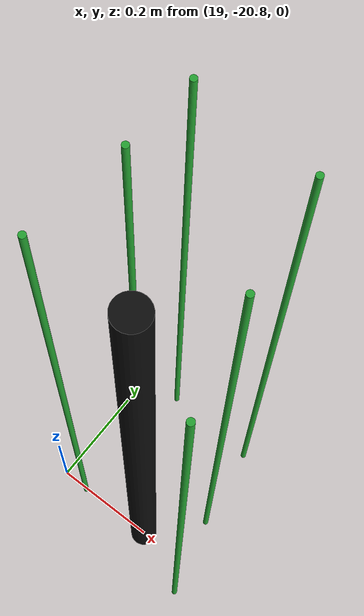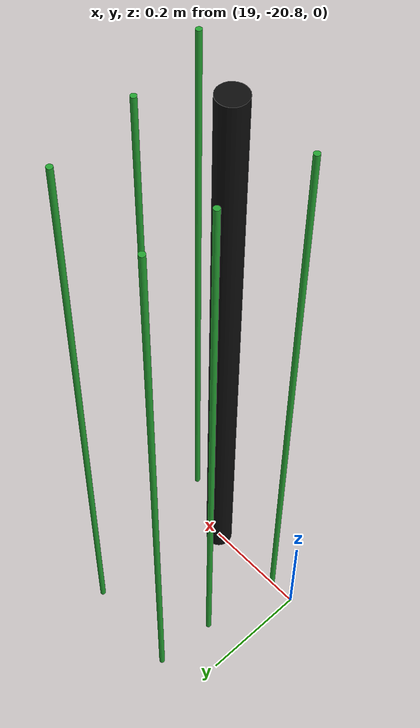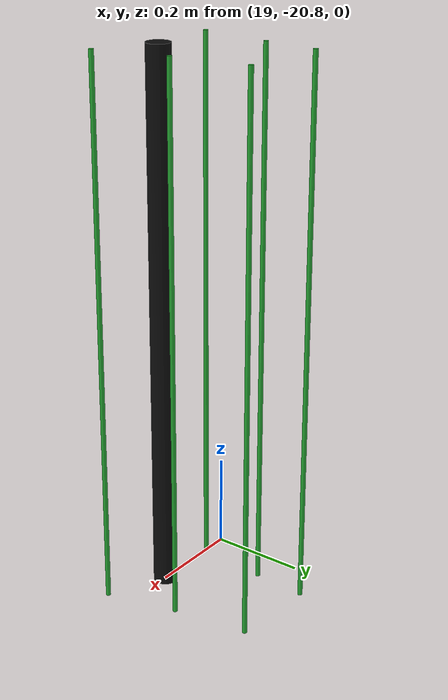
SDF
<sdf version="1.6">
 <world name="default">
  <model name="pole_21">
   <static>1</static>
   <pose>19.2 -20.8 0.575 0 -0 0</pose>
   <link name="link">
    <collision name="collision">
     <geometry><cylinder><length>1.15</length><radius>0.025</radius></cylinder></geometry>
    </collision>
    <visual name="visual">
     <geometry><cylinder><length>1.15</length><radius>0.025</radius></cylinder></geometry>
     <material>
      <script><uri>file://media/materials/scripts/gazebo.material</uri><name>Gazebo/Chrome</name></script>
      <shader type="vertex"><normal_map>__default__</normal_map></shader>
      <emissive>0.1 0.1 0.1 1</emissive>
      <specular>0.01 0.01 0.01 1</specular>
      <ambient>0.5 0.5 0.5 1</ambient>
      <diffuse>0.05 0.05 0.05 1</diffuse>
     </material>
    </visual>
   </link>
  </model>
  <model name="pole_27_clone_clone_26">
   <link name="link">
    <inertial>
     <mass>1</mass>
     <inertia><ixx>1</ixx><ixy>0</ixy><ixz>0</ixz><iyy>1</iyy><iyz>0</iyz><izz>1</izz></inertia>
    </inertial>
    <visual name="visual">
     <geometry><cylinder><length>1.15</length><radius>0.005</radius></cylinder></geometry>
     <material>
      <script><uri>file://media/materials/scripts/gazebo.material</uri><name>Gazebo/Green</name></script>
      <shader type="vertex"><normal_map>__default__</normal_map></shader>
      <emissive>0 0.1 0 1</emissive>
      <specular>0 0.01 0 1</specular>
      <ambient>0 0.5 0 1</ambient>
      <diffuse>0 0.05 0 1</diffuse>
     </material>
    </visual>
    <collision name="collision">
     <geometry><cylinder><radius>0.005</radius><length>1.15</length></cylinder></geometry>
     <surface>
      <friction>
       <ode><mu>1</mu><mu2>1</mu2><fdir1>0 0 0</fdir1><slip1>0</slip1><slip2>0</slip2></ode>
       <torsional>
        <coefficient>1</coefficient>
        <patch_radius>0</patch_radius>
        <surface_radius>0</surface_radius>
        <use_patch_radius>1</use_patch_radius>
        <ode><slip>0</slip></ode>
       </torsional>
      </friction>
      <bounce><restitution_coefficient>0</restitution_coefficient><threshold>1e+06</threshold></bounce>
      <contact>
       <collide_without_contact>0</collide_without_contact>
       <collide_without_contact_bitmask>1</collide_without_contact_bitmask>
       <collide_bitmask>1</collide_bitmask>
       <ode>
        <soft_cfm>0</soft_cfm>
        <soft_erp>0.2</soft_erp>
        <kp>1e+13</kp>
        <kd>1</kd>
        <max_vel>0.01</max_vel>
        <min_depth>0</min_depth>
       </ode>
       <bullet>
        <split_impulse>1</split_impulse>
        <split_impulse_penetration_threshold>-0.01</split_impulse_penetration_threshold>
        <soft_cfm>0</soft_cfm>
        <soft_erp>0.2</soft_erp>
        <kp>1e+13</kp>
        <kd>1</kd>
       </bullet>
      </contact>
     </surface>
    </collision>
   </link>
   <static>1</static>
   <pose>19.0523 -20.8023 0.575 0 -0 0</pose>
  </model>
  <model name="pole_27_clone_clone_27">
   <link name="link">
    <inertial>
     <mass>1</mass>
     <inertia><ixx>1</ixx><ixy>0</ixy><ixz>0</ixz><iyy>1</iyy><iyz>0</iyz><izz>1</izz></inertia>
    </inertial>
    <visual name="visual">
     <geometry><cylinder><length>1.15</length><radius>0.005</radius></cylinder></geometry>
     <material>
      <script><uri>file://media/materials/scripts/gazebo.material</uri><name>Gazebo/Green</name></script>
      <shader type="vertex"><normal_map>__default__</normal_map></shader>
      <emissive>0 0.1 0 1</emissive>
      <specular>0 0.01 0 1</specular>
      <ambient>0 0.5 0 1</ambient>
      <diffuse>0 0.05 0 1</diffuse>
     </material>
    </visual>
    <collision name="collision">
     <geometry><cylinder><radius>0.005</radius><length>1.15</length></cylinder></geometry>
     <surface>
      <friction>
       <ode><mu>1</mu><mu2>1</mu2><fdir1>0 0 0</fdir1><slip1>0</slip1><slip2>0</slip2></ode>
       <torsional>
        <coefficient>1</coefficient>
        <patch_radius>0</patch_radius>
        <surface_radius>0</surface_radius>
        <use_patch_radius>1</use_patch_radius>
        <ode><slip>0</slip></ode>
       </torsional>
      </friction>
      <bounce><restitution_coefficient>0</restitution_coefficient><threshold>1e+06</threshold></bounce>
      <contact>
       <collide_without_contact>0</collide_without_contact>
       <collide_without_contact_bitmask>1</collide_without_contact_bitmask>
       <collide_bitmask>1</collide_bitmask>
       <ode>
        <soft_cfm>0</soft_cfm>
        <soft_erp>0.2</soft_erp>
        <kp>1e+13</kp>
        <kd>1</kd>
        <max_vel>0.01</max_vel>
        <min_depth>0</min_depth>
       </ode>
       <bullet>
        <split_impulse>1</split_impulse>
        <split_impulse_penetration_threshold>-0.01</split_impulse_penetration_threshold>
        <soft_cfm>0</soft_cfm>
        <soft_erp>0.2</soft_erp>
        <kp>1e+13</kp>
        <kd>1</kd>
       </bullet>
      </contact>
     </surface>
    </collision>
   </link>
   <static>1</static>
   <pose>19.0707 -20.6485 0.575 0 -0 0</pose>
  </model>
  <model name="pole_27_clone_clone_28">
   <link name="link">
    <inertial>
     <mass>1</mass>
     <inertia><ixx>1</ixx><ixy>0</ixy><ixz>0</ixz><iyy>1</iyy><iyz>0</iyz><izz>1</izz></inertia>
    </inertial>
    <visual name="visual">
     <geometry><cylinder><length>1.15</length><radius>0.005</radius></cylinder></geometry>
     <material>
      <script><uri>file://media/materials/scripts/gazebo.material</uri><name>Gazebo/Green</name></script>
      <shader type="vertex"><normal_map>__default__</normal_map></shader>
      <emissive>0 0.1 0 1</emissive>
      <specular>0 0.01 0 1</specular>
      <ambient>0 0.5 0 1</ambient>
      <diffuse>0 0.05 0 1</diffuse>
     </material>
    </visual>
    <collision name="collision">
     <geometry><cylinder><radius>0.005</radius><length>1.15</length></cylinder></geometry>
     <surface>
      <friction>
       <ode><mu>1</mu><mu2>1</mu2><fdir1>0 0 0</fdir1><slip1>0</slip1><slip2>0</slip2></ode>
       <torsional>
        <coefficient>1</coefficient>
        <patch_radius>0</patch_radius>
        <surface_radius>0</surface_radius>
        <use_patch_radius>1</use_patch_radius>
        <ode><slip>0</slip></ode>
       </torsional>
      </friction>
      <bounce><restitution_coefficient>0</restitution_coefficient><threshold>1e+06</threshold></bounce>
      <contact>
       <collide_without_contact>0</collide_without_contact>
       <collide_without_contact_bitmask>1</collide_without_contact_bitmask>
       <collide_bitmask>1</collide_bitmask>
       <ode>
        <soft_cfm>0</soft_cfm>
        <soft_erp>0.2</soft_erp>
        <kp>1e+13</kp>
        <kd>1</kd>
        <max_vel>0.01</max_vel>
        <min_depth>0</min_depth>
       </ode>
       <bullet>
        <split_impulse>1</split_impulse>
        <split_impulse_penetration_threshold>-0.01</split_impulse_penetration_threshold>
        <soft_cfm>0</soft_cfm>
        <soft_erp>0.2</soft_erp>
        <kp>1e+13</kp>
        <kd>1</kd>
       </bullet>
      </contact>
     </surface>
    </collision>
   </link>
   <static>1</static>
   <pose>19.0778 -20.5347 0.575 0 -0 0</pose>
  </model>
  <model name="pole_27_clone_clone_32">
   <link name="link">
    <inertial>
     <mass>1</mass>
     <inertia><ixx>1</ixx><ixy>0</ixy><ixz>0</ixz><iyy>1</iyy><iyz>0</iyz><izz>1</izz></inertia>
    </inertial>
    <visual name="visual">
     <geometry><cylinder><length>1.15</length><radius>0.005</radius></cylinder></geometry>
     <material>
      <script><uri>file://media/materials/scripts/gazebo.material</uri><name>Gazebo/Green</name></script>
      <shader type="vertex"><normal_map>__default__</normal_map></shader>
      <emissive>0 0.1 0 1</emissive>
      <specular>0 0.01 0 1</specular>
      <ambient>0 0.5 0 1</ambient>
      <diffuse>0 0.05 0 1</diffuse>
     </material>
    </visual>
    <collision name="collision">
     <geometry><cylinder><radius>0.005</radius><length>1.15</length></cylinder></geometry>
     <surface>
      <friction>
       <ode><mu>1</mu><mu2>1</mu2><fdir1>0 0 0</fdir1><slip1>0</slip1><slip2>0</slip2></ode>
       <torsional>
        <coefficient>1</coefficient>
        <patch_radius>0</patch_radius>
        <surface_radius>0</surface_radius>
        <use_patch_radius>1</use_patch_radius>
        <ode><slip>0</slip></ode>
       </torsional>
      </friction>
      <bounce><restitution_coefficient>0</restitution_coefficient><threshold>1e+06</threshold></bounce>
      <contact>
       <collide_without_contact>0</collide_without_contact>
       <collide_without_contact_bitmask>1</collide_without_contact_bitmask>
       <collide_bitmask>1</collide_bitmask>
       <ode>
        <soft_cfm>0</soft_cfm>
        <soft_erp>0.2</soft_erp>
        <kp>1e+13</kp>
        <kd>1</kd>
        <max_vel>0.01</max_vel>
        <min_depth>0</min_depth>
       </ode>
       <bullet>
        <split_impulse>1</split_impulse>
        <split_impulse_penetration_threshold>-0.01</split_impulse_penetration_threshold>
        <soft_cfm>0</soft_cfm>
        <soft_erp>0.2</soft_erp>
        <kp>1e+13</kp>
        <kd>1</kd>
       </bullet>
      </contact>
     </surface>
    </collision>
   </link>
   <static>1</static>
   <pose>19.3222 -20.8562 0.575 0 -0 0</pose>
  </model>
  <model name="pole_27_clone_clone_33">
   <link name="link">
    <inertial>
     <mass>1</mass>
     <inertia><ixx>1</ixx><ixy>0</ixy><ixz>0</ixz><iyy>1</iyy><iyz>0</iyz><izz>1</izz></inertia>
    </inertial>
    <visual name="visual">
     <geometry><cylinder><length>1.15</length><radius>0.005</radius></cylinder></geometry>
     <material>
      <script><uri>file://media/materials/scripts/gazebo.material</uri><name>Gazebo/Green</name></script>
      <shader type="vertex"><normal_map>__default__</normal_map></shader>
      <emissive>0 0.1 0 1</emissive>
      <specular>0 0.01 0 1</specular>
      <ambient>0 0.5 0 1</ambient>
      <diffuse>0 0.05 0 1</diffuse>
     </material>
    </visual>
    <collision name="collision">
     <geometry><cylinder><radius>0.005</radius><length>1.15</length></cylinder></geometry>
     <surface>
      <friction>
       <ode><mu>1</mu><mu2>1</mu2><fdir1>0 0 0</fdir1><slip1>0</slip1><slip2>0</slip2></ode>
       <torsional>
        <coefficient>1</coefficient>
        <patch_radius>0</patch_radius>
        <surface_radius>0</surface_radius>
        <use_patch_radius>1</use_patch_radius>
        <ode><slip>0</slip></ode>
       </torsional>
      </friction>
      <bounce><restitution_coefficient>0</restitution_coefficient><threshold>1e+06</threshold></bounce>
      <contact>
       <collide_without_contact>0</collide_without_contact>
       <collide_without_contact_bitmask>1</collide_without_contact_bitmask>
       <collide_bitmask>1</collide_bitmask>
       <ode>
        <soft_cfm>0</soft_cfm>
        <soft_erp>0.2</soft_erp>
        <kp>1e+13</kp>
        <kd>1</kd>
        <max_vel>0.01</max_vel>
        <min_depth>0</min_depth>
       </ode>
       <bullet>
        <split_impulse>1</split_impulse>
        <split_impulse_penetration_threshold>-0.01</split_impulse_penetration_threshold>
        <soft_cfm>0</soft_cfm>
        <soft_erp>0.2</soft_erp>
        <kp>1e+13</kp>
        <kd>1</kd>
       </bullet>
      </contact>
     </surface>
    </collision>
   </link>
   <static>1</static>
   <pose>19.2851 -20.706 0.575 0 -0 0</pose>
  </model>
  <model name="pole_27_clone_clone_34">
   <link name="link">
    <inertial>
     <mass>1</mass>
     <inertia><ixx>1</ixx><ixy>0</ixy><ixz>0</ixz><iyy>1</iyy><iyz>0</iyz><izz>1</izz></inertia>
    </inertial>
    <visual name="visual">
     <geometry><cylinder><length>1.15</length><radius>0.005</radius></cylinder></geometry>
     <material>
      <script><uri>file://media/materials/scripts/gazebo.material</uri><name>Gazebo/Green</name></script>
      <shader type="vertex"><normal_map>__default__</normal_map></shader>
      <emissive>0 0.1 0 1</emissive>
      <specular>0 0.01 0 1</specular>
      <ambient>0 0.5 0 1</ambient>
      <diffuse>0 0.05 0 1</diffuse>
     </material>
    </visual>
    <collision name="collision">
     <geometry><cylinder><radius>0.005</radius><length>1.15</length></cylinder></geometry>
     <surface>
      <friction>
       <ode><mu>1</mu><mu2>1</mu2><fdir1>0 0 0</fdir1><slip1>0</slip1><slip2>0</slip2></ode>
       <torsional>
        <coefficient>1</coefficient>
        <patch_radius>0</patch_radius>
        <surface_radius>0</surface_radius>
        <use_patch_radius>1</use_patch_radius>
        <ode><slip>0</slip></ode>
       </torsional>
      </friction>
      <bounce><restitution_coefficient>0</restitution_coefficient><threshold>1e+06</threshold></bounce>
      <contact>
       <collide_without_contact>0</collide_without_contact>
       <collide_without_contact_bitmask>1</collide_without_contact_bitmask>
       <collide_bitmask>1</collide_bitmask>
       <ode>
        <soft_cfm>0</soft_cfm>
        <soft_erp>0.2</soft_erp>
        <kp>1e+13</kp>
        <kd>1</kd>
        <max_vel>0.01</max_vel>
        <min_depth>0</min_depth>
       </ode>
       <bullet>
        <split_impulse>1</split_impulse>
        <split_impulse_penetration_threshold>-0.01</split_impulse_penetration_threshold>
        <soft_cfm>0</soft_cfm>
        <soft_erp>0.2</soft_erp>
        <kp>1e+13</kp>
        <kd>1</kd>
       </bullet>
      </contact>
     </surface>
    </collision>
   </link>
   <static>1</static>
   <pose>19.261 -20.5468 0.575 0 -0 0</pose>
  </model>
 </world>
</sdf>
